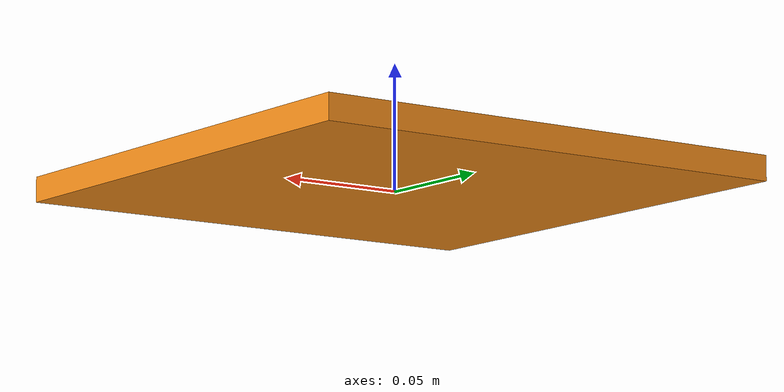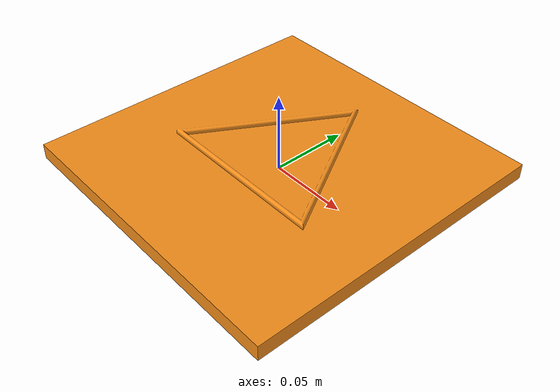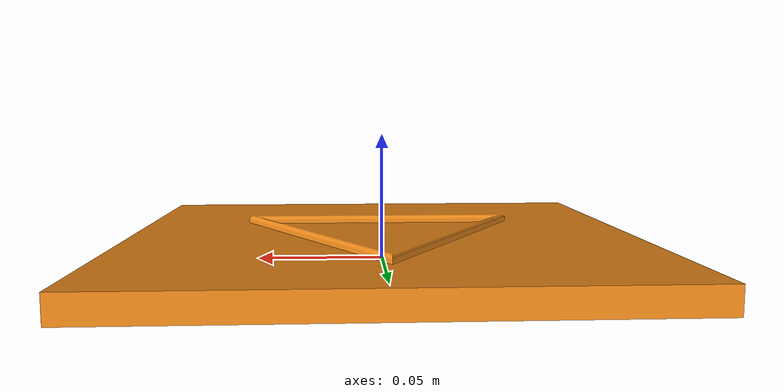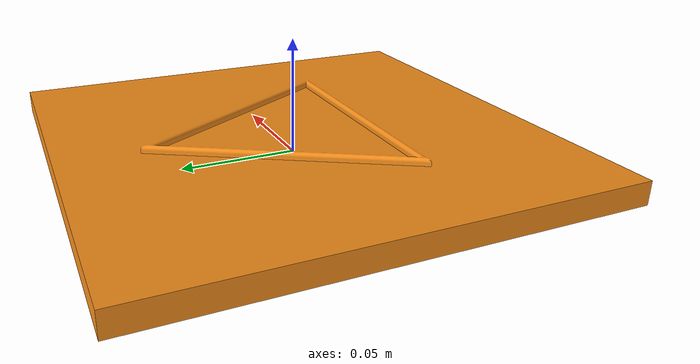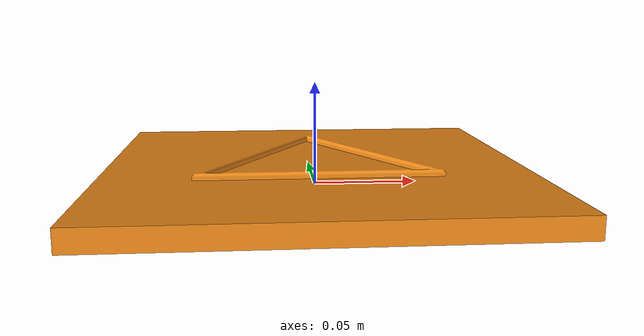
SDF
<?xml version="1.0"?>

<sdf version="1.5">
  <model name='triangle_2d'>
    <link name='triangle_2d_root_link'>
      <pose>0 0 0 0 0 0</pose>
      <inertial>
	<!-- CoM -->
	<pose>0.0 0.0 0.0</pose>
        <mass>0.2</mass>
        <inertia>
          <ixx>0.001339383424</ixx>
          <ixy>0.0</ixy>
          <ixz>0.0</ixz>
          <iyy>0.001339383424</iyy>
          <iyz>0.0</iyz>
          <izz>0.002671886080</izz>
        </inertia>
      </inertial>
      <collision name='triangle_2d_collision'>
        <geometry>
          <mesh><uri>model://cf_triangle_2d/triangle_2d.stl</uri></mesh>
        </geometry>
	<surface>
          <friction>
            <ode>
              <mu>0.1</mu>
              <mu2>0.1</mu2>
            </ode>
          </friction>
	</surface>
      </collision>
      <visual name='triangle_2d_visual'>
        <geometry>
          <mesh><uri>model://cf_triangle_2d/triangle_2d.dae</uri></mesh>
        </geometry>
        <material>
	  <script>
	    <uri>file://media/materials/scripts/gazebo.material</uri>
	    <name>Gazebo/Orange</name>
	  </script>
        </material>
      </visual>
    </link>
  </model>
</sdf>
